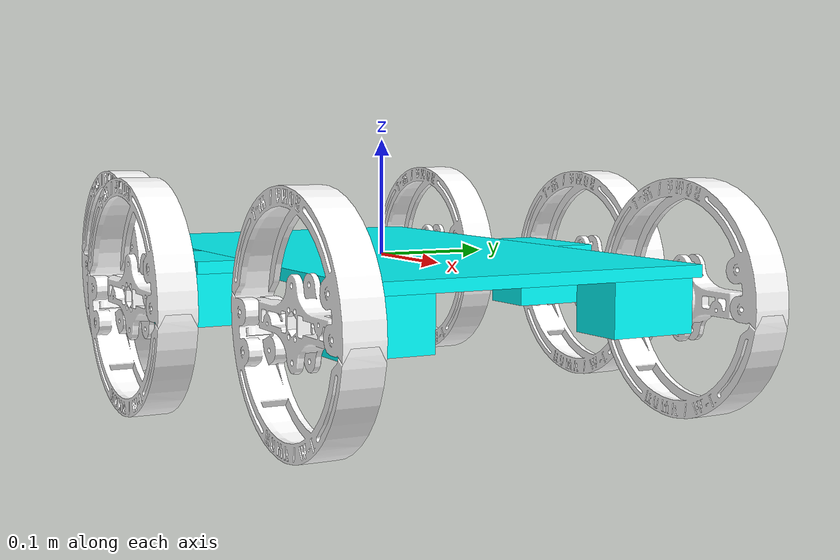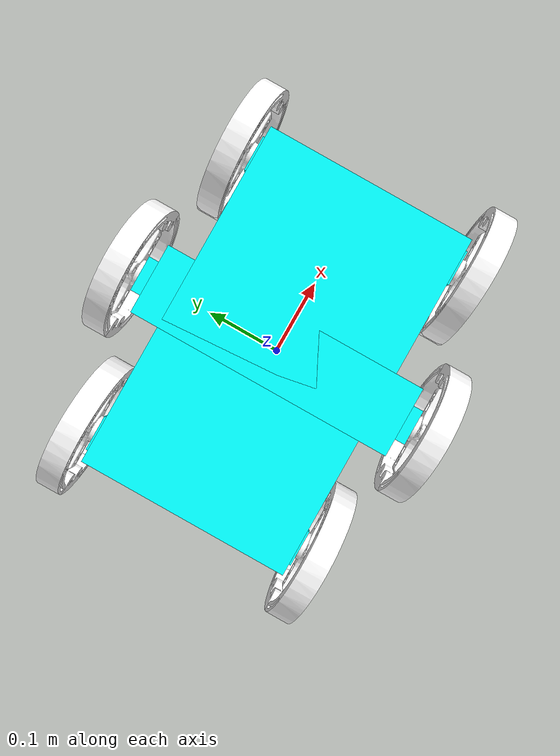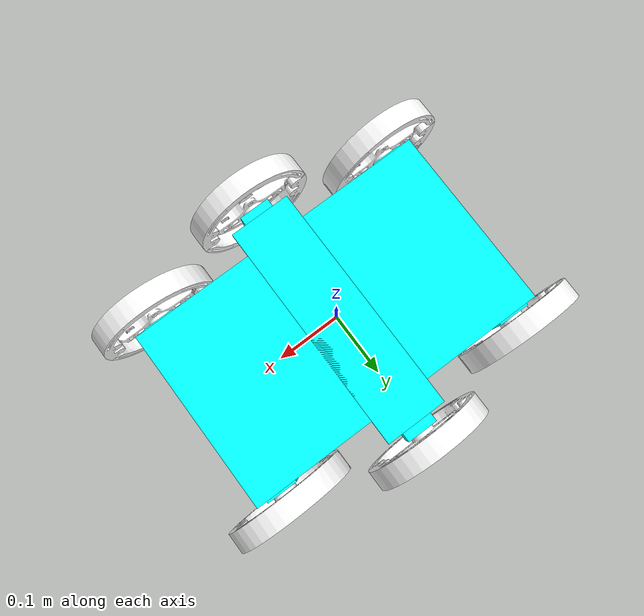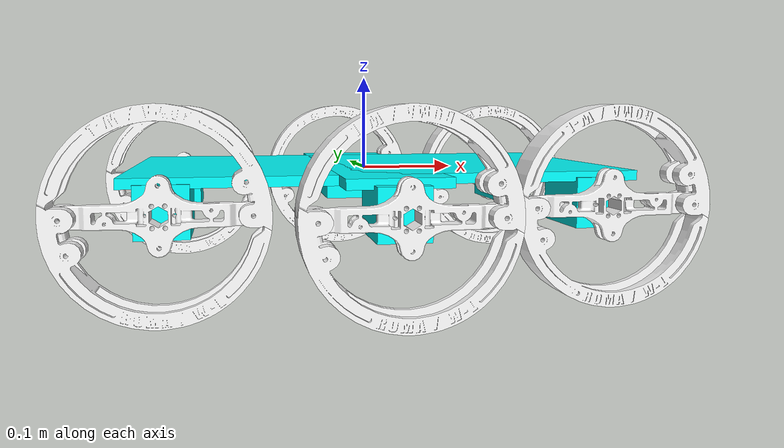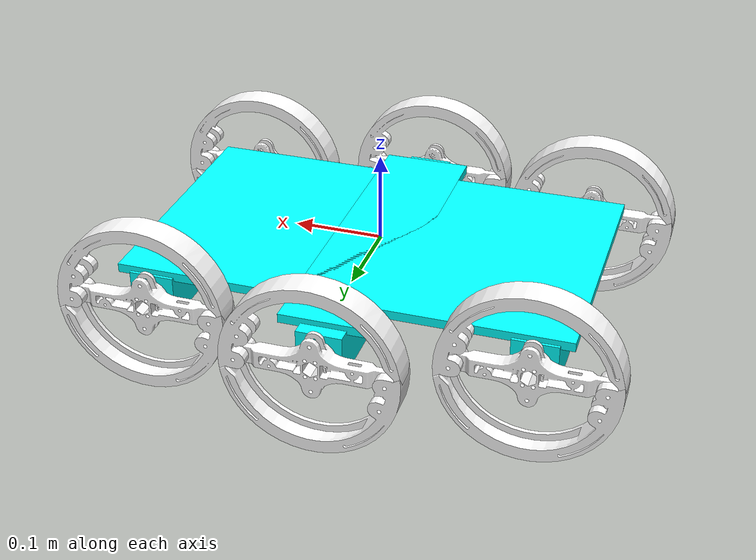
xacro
<?xml version="1.0" encoding="utf-8"?>

<robot xmlns:xacro="http://www.ros.org/wiki/xacro" name="WheelLegHexapod">

  <!--load model definations-->
  <xacro:include filename="$(find wheelleg_description)/urdf/WheelLeg.xacro"/>

  <!--load gazebo specific configuration-->
  <xacro:include filename="$(find wheelleg_description)/urdf/WheelLeg.gazebo"/>

  <!--load control interface for robot-->
  <gazebo>
    <plugin name="gazebo_ros_control" filename="libgazebo_ros_control.so">
      <robotNamespace>/WheelLegHexapod</robotNamespace>
    </plugin>
  </gazebo>

    <!--define robot base link-->

  <link name="base_link">
    <inertial>
      <origin xyz="0 0 0" rpy="0 0 0"/>
      <mass value="1"/>
      <inertia ixx="0.00167"  ixy="0"  ixz="0" iyy="0.00167" iyz="0" izz="0.00167" />
    </inertial>

    <visual>
      <origin xyz="0 0 0" rpy="0 0 0" />
      <geometry>
        <box size="0.5 0.300 0.01" />
      </geometry>
      <material name="Cyan">
        <color rgba="0 1.0 1.0 1.0"/>
      </material>
    </visual>

    <collision>
      <origin xyz="0 0 0" rpy="0 0 0"/>
      <geometry>
        <box size="0.5 0.300 0.01" />
      </geometry>
    </collision>

  </link>

  <joint name="dummy_base" type="fixed">
    <origin xyz="0 0 0" rpy="0 0 0"/>
    <parent link="base_link"/>
    <child link="base_link_decoration"/>
    <axis xyz="0 0 1"/>
  </joint>

  <link name="base_link_decoration">

    <inertial>
      <origin xyz="0.05 0.190 0.005" rpy="0 0 0"/>
      <mass value="1"/>
      <inertia ixx="0.00167"  ixy="0"  ixz="0" iyy="0.00167" iyz="0" izz="0.00167" />
    </inertial>

    <visual>
      <origin xyz="0 0 0" rpy="0 0 0" />
      <geometry>
        <box size="0.1 0.380 0.01" />
      </geometry>
      <material name="Cyan">
        <color rgba="0 1.0 1.0 1.0"/>
      </material>
    </visual>

  </link>

  <!--define joints-->
  <xacro:LeftWheelLeg name="LF"  x="0.21" y="0.116" z="-0.026" parent="base_link"/>
  <xacro:joint_box name="LF_Box" x="0.21" y="0.116" z="-0.026" parent="base_link"/>

  <xacro:LeftWheelLeg name="LM"  x="0" y="0.168" z="-0.026" parent="base_link"/>
  <xacro:joint_box name="LM_Box" x="0" y="0.168" z="-0.026" parent="base_link"/>

  <xacro:LeftWheelLeg name="LB"  x="-0.21" y="0.116" z="-0.026" parent="base_link"/>
  <xacro:joint_box name="LB_Box" x="-0.21" y="0.116" z="-0.026" parent="base_link"/>

  <xacro:RightWheelLeg name="RF" x="0.21" y="-0.116" z="-0.026" parent="base_link"/>
  <xacro:joint_box name="RF_Box" x="0.21" y="-0.116" z="-0.026" parent="base_link"/>

  <xacro:RightWheelLeg name="RM" x="0" y="-0.168" z="-0.026" parent="base_link"/>
  <xacro:joint_box name="RM_Box" x="0" y="-0.168" z="-0.026" parent="base_link"/>

  <xacro:RightWheelLeg name="RB" x="-0.21" y="-0.116" z="-0.026" parent="base_link"/>
  <xacro:joint_box name="RB_Box" x="-0.21" y="-0.116" z="-0.026" parent="base_link"/>

  <!--add gazebo joint configures-->
  <xacro:wheelLegJointConfig name="LF" />
  <xacro:wheelLegJointConfig name="LM" />
  <xacro:wheelLegJointConfig name="LB" />

  <xacro:wheelLegJointConfig name="RF" />
  <xacro:wheelLegJointConfig name="RM" />
  <xacro:wheelLegJointConfig name="RB" />

  <!--Collision Display Plugin-->

</robot>

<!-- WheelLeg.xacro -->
<robot xmlns:xacro="http://www.ros.org/wiki/xacro" >

  <xacro:macro name="joint_box" params="name x y z parent">

    <joint name="${name}_fixed_joint" type="fixed">
      <origin xyz="${x} ${y} ${z}" rpy="0 0 0"/>
      <parent link="${parent}"/>
      <child link="${name}"/>
      <axis xyz="0 0 1"/>
    </joint>

    <link name="${name}">

      <inertial>
        <origin xyz="0.0 0.0 0.0" rpy="0 0 0"/>
        <mass value="0.01"/>
        <inertia ixx="0.000167"  ixy="0"  ixz="0" iyy="0.000167" iyz="0" izz="0.000167" />
      </inertial>

      <visual>
        <origin xyz="0 0 0" rpy="0 0 0" />
        <geometry>
          <box size="0.05 0.075 0.05" />
        </geometry>
        <material name="Cyan">
          <color rgba="0 1.0 1.0 1.0"/>
        </material>
      </visual>

    </link>

  </xacro:macro>

  <!--left wheelLeg model-->
  <xacro:macro name="LeftWheelLeg" params="name x y z parent">

    <link name="${name}">
      <inertial>
        <origin
          xyz="4.8179E-09 1.5313E-06 0.045042"
          rpy="0 0 0" />
        <mass
          value="0.075119" />
        <inertia
          ixx="0.00010565"
          ixy="-1.0649E-07"
          ixz="-2.3479E-12"
          iyy="2.7546E-05"
          iyz="-8.9308E-10"
          izz="9.6655E-05" />
      </inertial>
      <visual>
        <origin
          xyz="0 0 0"
          rpy="0 0 0" />
        <geometry>
          <mesh
            filename="package://wheelleg_description/meshes/Left.STL" />
        </geometry>
        <material
          name="">
          <color
            rgba="1 1 1 1" />
        </material>
      </visual>
      <collision>
        <origin
          xyz="0 0 0"
          rpy="0 0 0" />
        <geometry>
          <mesh
            filename="package://wheelleg_description/meshes/Left.STL" />
        </geometry>
      </collision>
    </link>

    <joint name="${name}_Joint" type="continuous">
      <origin
        xyz="${x} ${y} ${z}"
        rpy="1.5708 -1.5708 3.1416" />
      <parent
        link="${parent}" />
      <child
        link="${name}" />
      <axis
        xyz="0 0 1" />
      <limit effort="2.8" velocity="30"/>
    </joint>

    <link name="${name}RA">
      <inertial>
        <origin
          xyz="0.060620953877514 -0.0509052185223456 -0.0160797180106055"
          rpy="0 0 0" />
        <mass
          value="0.102065831041357" />
        <inertia
          ixx="0.000107618762660542"
          ixy="6.4058045299092E-05"
          ixz="1.40721471251035E-07"
          iyy="0.000426511611787524"
          iyz="-2.25569567809916E-07"
          izz="0.000513500369211842" />
      </inertial>
      <visual>
        <origin
          xyz="0 0 0"
          rpy="0 0 0" />
        <geometry>
          <mesh
            filename="package://wheelleg_description/meshes/LeftRimA.STL" />
        </geometry>
        <material
          name="">
          <color
            rgba="1 1 1 1" />
        </material>
      </visual>
      <collision name = "${name}RA_collision">
        <origin
          xyz="0 0 0"
          rpy="0 0 0" />
        <geometry>
          <mesh
            filename="package://wheelleg_description/meshes/LeftRimA.STL" />
        </geometry>
      </collision>
    </link>

    <joint name="${name}RA_Joint" type="continuous">
      <origin
        xyz="0 -0.08 0.038242"
        rpy="3.1416 0 1.5708" />
      <parent
        link="${name}" />
      <child
        link="${name}RA" />
      <axis
        xyz="0 0 1" />
      <dynamics damping="0.01" friction="0.0"/>
      <limit effort="2.8" velocity="5"/>
    </joint>

    <link name="${name}RB">
      <inertial>
        <origin
          xyz="0.060620953877514 -0.0509052185223458 -0.0160797180106054"
          rpy="0 0 0" />
        <mass
          value="0.102065831041357" />
        <inertia
          ixx="0.000107618762660542"
          ixy="6.4058045299092E-05"
          ixz="1.40721471251074E-07"
          iyy="0.000426511611787524"
          iyz="-2.2556956780994E-07"
          izz="0.000513500369211842" />
      </inertial>
      <visual>
        <origin
          xyz="0 0 0"
          rpy="0 0 0" />
        <geometry>
          <mesh
            filename="package://wheelleg_description/meshes/LeftRimB.STL" />
        </geometry>
        <material
          name="">
          <color
            rgba="1 1 1 1" />
        </material>
      </visual>
      <collision name = "${name}RB_collision">
        <origin
          xyz="0 0 0"
          rpy="0 0 0" />
        <geometry>
          <mesh
            filename="package://wheelleg_description/meshes/LeftRimB.STL" />
        </geometry>
      </collision>
    </link>

    <joint name="${name}RB_Joint" type="continuous">
      <origin
        xyz="0 0.08 0.038242"
        rpy="3.1416 0 -1.5708" />
      <parent
        link="${name}" />
      <child
        link="${name}RB" />
      <axis
        xyz="0 0 1" />
      <dynamics damping="0.01" friction="0.0"/>
      <limit effort="2.8" velocity="5"/>
    </joint>

  </xacro:macro>

  <!--right wheelLeg model-->
  <xacro:macro name="RightWheelLeg" params="name x y z parent">

    <link name="${name}">
      <inertial>
        <origin
          xyz="4.8179E-09 1.5313E-06 0.045042"
          rpy="0 0 0" />
        <mass
          value="0.075119" />
        <inertia
          ixx="0.00010565"
          ixy="-1.0649E-07"
          ixz="-2.3479E-12"
          iyy="2.7546E-05"
          iyz="-8.9308E-10"
          izz="9.6655E-05" />
      </inertial>
      <visual>
        <origin
          xyz="0 0 0"
          rpy="0 0 0" />
        <geometry>
          <mesh
            filename="package://wheelleg_description/meshes/Right.STL" />
        </geometry>
        <material
          name="">
          <color
            rgba="1 1 1 1" />
        </material>
      </visual>
      <collision>
        <origin
          xyz="0 0 0"
          rpy="0 0 0" />
        <geometry>
          <mesh
            filename="package://wheelleg_description/meshes/Right.STL" />
        </geometry>
      </collision>
    </link>

    <joint name="${name}_Joint" type="continuous">
      <origin
        xyz="${x} ${y} ${z}"
        rpy="1.5708 1.5708 0.0" />
      <parent
        link="${parent}" />
      <child
        link="${name}" />
      <axis
        xyz="0 0 1" />
      <limit effort="2.8" velocity="30"/>
    </joint>

    <link name="${name}RA">
      <inertial>
        <origin
          xyz="0.0606209538775138 -0.0509052185223455 0.0159343419031902"
          rpy="0 0 0" />
        <mass
          value="0.102065831041357" />
        <inertia
          ixx="0.000107618762660542"
          ixy="6.40580452990925E-05"
          ixz="1.40721471251091E-07"
          iyy="0.000426511611787524"
          iyz="-2.25569567809853E-07"
          izz="0.000513500369211842" />
      </inertial>
      <visual>
        <origin
          xyz="0 0 0"
          rpy="0 0 0" />
        <geometry>
          <mesh
            filename="package://wheelleg_description/meshes/RightRimA.STL" />
        </geometry>
        <material
          name="">
          <color
            rgba="1 1 1 1" />
        </material>
      </visual>
      <collision name = "${name}RA_collision">
        <origin
          xyz="0 0 0"
          rpy="0 0 0" />
        <geometry>
          <mesh
            filename="package://wheelleg_description/meshes/RightRimA.STL" />
        </geometry>
      </collision>
    </link>

    <joint name="${name}RA_Joint" type="continuous">
      <origin
        xyz="0 -0.08 0.038244"
        rpy="0 0 1.5708" />
      <parent
        link="${name}" />
      <child
        link="${name}RA" />
      <axis
        xyz="0 0 1" />

      <dynamics damping="0.01" friction="0.0"/>
      <limit effort="2.8" velocity="5"/>
    </joint>

    <link name="${name}RB">
      <inertial>
        <origin
          xyz="0.060620953877514 -0.050905218522346 0.0159343419031902"
          rpy="0 0 0" />
        <mass
          value="0.102065831041357" />
        <inertia
          ixx="0.000107618762660542"
          ixy="6.40580452990932E-05"
          ixz="1.40721471251035E-07"
          iyy="0.000426511611787523"
          iyz="-2.25569567810021E-07"
          izz="0.00051350036921184" />
      </inertial>
      <visual>
        <origin
          xyz="0 0 0"
          rpy="0 0 0" />
        <geometry>
          <mesh
            filename="package://wheelleg_description/meshes/RightRimB.STL" />
        </geometry>
        <material
          name="">
          <color
            rgba="1 1 1 1" />
        </material>
      </visual>
      <collision name = "${name}RB_collision">
        <origin
          xyz="0 0 0"
          rpy="0 0 0" />
        <geometry>
          <mesh
            filename="package://wheelleg_description/meshes/RightRimB.STL" />
        </geometry>
      </collision>
    </link>

    <joint name="${name}RB_Joint" type="continuous">
      <origin
        xyz="0 0.08 0.038244"
        rpy="0 0 -1.5708" />
      <parent
        link="${name}" />
      <child
        link="${name}RB" />
      <axis
        xyz="0 0 1" />
      <dynamics damping="0.01" friction="0.0"/>
      <limit effort="2.8" velocity="30"/>
    </joint>

  </xacro:macro>

</robot>
